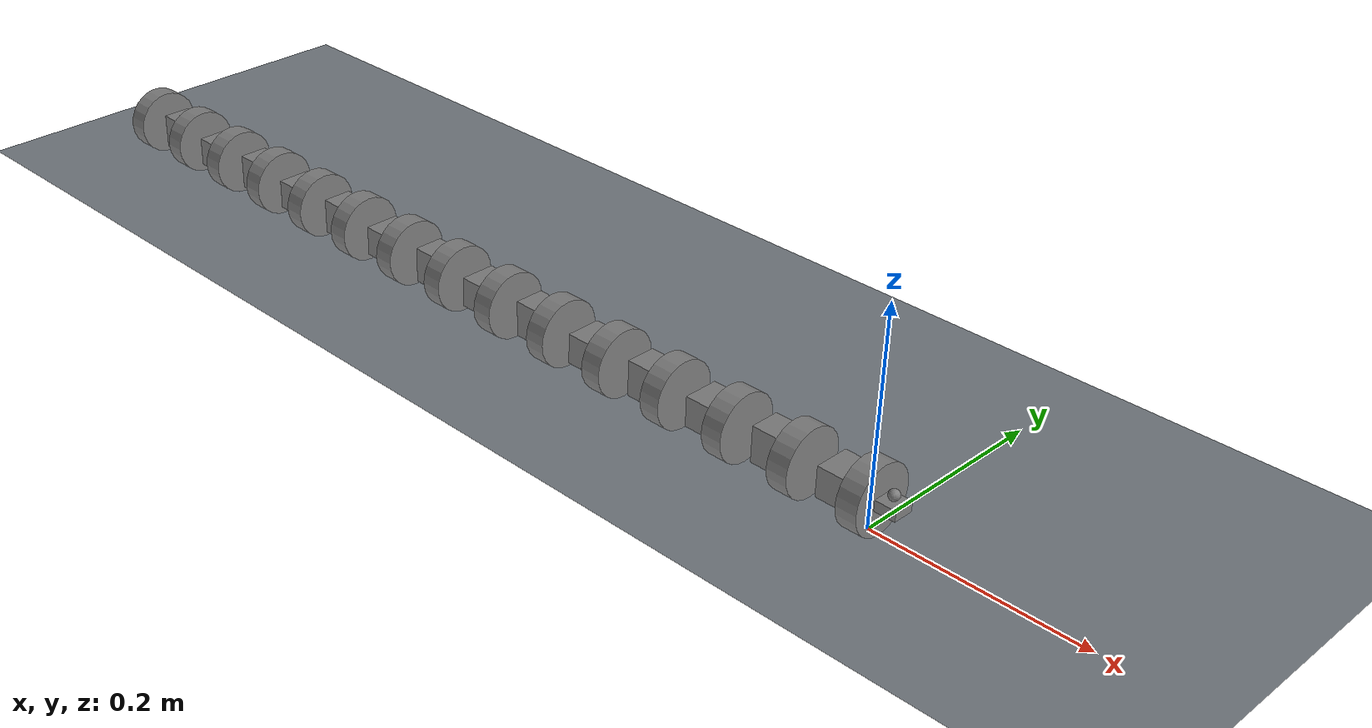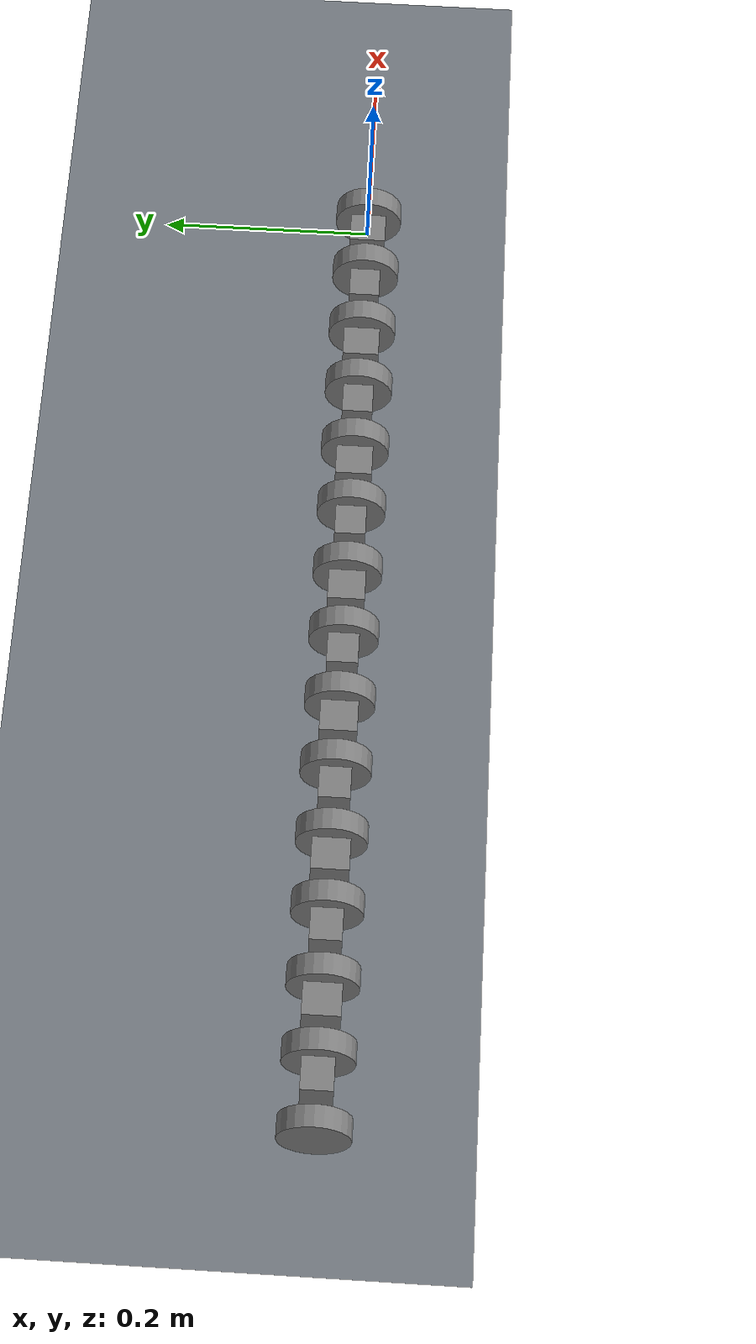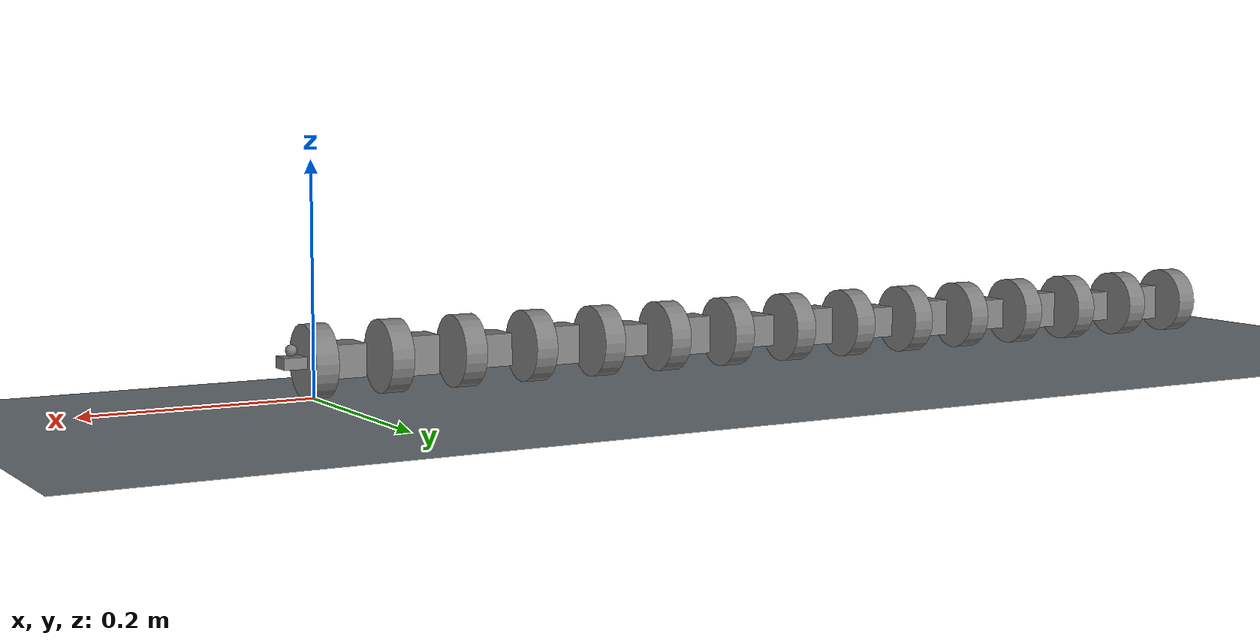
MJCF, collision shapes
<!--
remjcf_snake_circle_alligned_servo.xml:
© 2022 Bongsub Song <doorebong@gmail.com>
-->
<mujoco model="snake_scene_v1">
    <option timestep="0.005" integrator="implicitfast"/>

    <visual>
      <global offwidth="1920"  offheight="1080" />
    </visual>

    <size memory="100M"/>

    <include file="remjcf_snake_circle_alligned_servo.xml"/>

    <asset>
        <texture type="skybox" builtin="gradient" rgb1=".3 .5 .7" rgb2="0 0 0" width="512" height="512"/>
        <texture name="body" type="cube" builtin="flat" mark="cross" width="128" height="128"
                 rgb1="0.8 0.6 0.4" rgb2="0.8 0.6 0.4" markrgb="1 1 1" random="0.01"/>
        <material name="body" texture="body" texuniform="true" rgba="0.8 0.6 .4 1"/>
        <texture name="grid" type="2d" builtin="checker" width="512" height="512" rgb1=".1 .2 .3" rgb2=".2 .3 .4"/>
        <material name="grid" texture="grid" texrepeat="1 1" texuniform="true" reflectance=".2"/>
        <texture type="2d" name="groundplane" builtin="checker" mark="edge" rgb1="0.2 0.3 0.4" rgb2="0.1 0.2 0.3" markrgb="0.8 0.8 0.8" width="300" height="300"/>
        <texture name="texplane" type="2d" builtin="checker" rgb1=".8 .8 .8" rgb2=".1 0.15 0.2" width="512" height="512" mark="cross" markrgb=".8 .8 .8"/>
        <texture name="texgeom" type="cube" builtin="flat" mark="cross" width="127" height="1278" rgb1="0.8 0.6 0.4" rgb2="0.8 0.6 0.4" markrgb="1 1 1" random="0.01"/>
        <material name="matplane" reflectance="0.3" texture="texplane" texrepeat="2 2" texuniform="true"/>
        <material name="matgeom" texture="texgeom" texuniform="true" rgba="0.8 0.6 .4 1"/>
        <hfield name="terrain" ncol="201" nrow="201" size="30 30 5 .1"/>
    </asset>

      <worldbody>
        <!-- Flat plane -->
        <geom name="floor" pos="0 0 0" size="0 0 .25" type="plane" material="matplane" condim="6" friction="0.5 0.1 0.01"/>
      </worldbody>

    <contact>
        <!-- friction="normal tangential" -->

        <!-- 기본 -->

        <!-- 회전 및 구름 마찰 적용 -->
        <pair name="con_head" geom1="floor"   geom2="c-head"   condim="6" friction="1.5 1.3 0.01 0.004 0.004"/>
        <pair name="con_link1" geom1="floor"  geom2="c-link1"  condim="6" friction="1.5 1.3 0.01 0.004 0.004"/>
        <pair name="con_link2" geom1="floor"  geom2="c-link2"  condim="6" friction="1.5 1.3 0.01 0.004 0.004"/>
        <pair name="con_link3" geom1="floor"  geom2="c-link3"  condim="6" friction="1.5 1.3 0.01 0.004 0.004"/>
        <pair name="con_link4" geom1="floor"  geom2="c-link4"  condim="6" friction="1.5 1.3 0.01 0.004 0.004"/>
        <pair name="con_link5" geom1="floor"  geom2="c-link5"  condim="6" friction="1.5 1.3 0.01 0.004 0.004"/>
        <pair name="con_link6" geom1="floor"  geom2="c-link6"  condim="6" friction="1.5 1.3 0.01 0.004 0.004"/>
        <pair name="con_link7" geom1="floor"  geom2="c-link7"  condim="6" friction="1.5 1.3 0.01 0.004 0.004"/>
        <pair name="con_link8" geom1="floor"  geom2="c-link8"  condim="6" friction="1.5 1.3 0.01 0.004 0.004"/>
        <pair name="con_link9" geom1="floor"  geom2="c-link9"  condim="6" friction="1.5 1.3 0.01 0.004 0.004"/>
        <pair name="con_link10" geom1="floor" geom2="c-link10" condim="6" friction="1.5 1.3 0.01 0.004 0.004"/>
        <pair name="con_link11" geom1="floor" geom2="c-link11" condim="6" friction="1.5 1.3 0.01 0.004 0.004"/>
        <pair name="con_link12" geom1="floor" geom2="c-link12" condim="6" friction="1.5 1.3 0.01 0.004 0.004"/>
        <pair name="con_link13" geom1="floor" geom2="c-link13" condim="6" friction="1.5 1.3 0.01 0.004 0.004"/>
        <pair name="con_tail" geom1="floor"   geom2="c-tail"   condim="6" friction="1.5 1.3 0.01 0.004 0.004"/>
    </contact>
</mujoco>

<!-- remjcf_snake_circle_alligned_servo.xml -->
<!-- All right reserved -->
<!-- Description : BRM snake robot Mujoco simulation xml and axis alligned version. -->
<!-- v20220830 : Circular frame version -->
<!-- v20221103 : Body Frame Alligned -->
<!-- v20240122 : mesh contact is convert to default shape -->

<mujoco model="horcrux">

    <asset>
        <mesh name="head_link" file="./asset/Head.stl"/>
        <mesh name="v_link" file="./asset/Link2.stl"/>
        <mesh name="h_link" file="./asset/Link3.stl"/>
        <mesh name="tail_link" file="./asset/Tail.stl"/>
    </asset>

    <default>
        <default class="joint_defaults">
            <joint type="hinge" pos="0.0388 0 0" limited="true" range="-75 75" damping="0.6" stiffness="0" armature="0.01" />
        </default>
        <default class="C-frame">
            <geom type="cylinder" mass="0.05" condim="6" size="0.0318 0.01" rgba="0.5 0.5 0.5 0.1" priority="1" friction="0.7 0.015 0.001" pos="0 0 0" euler="0 90 0"/>
        </default>
        <default class="H-link">
            <geom type="box" mass="0.1" condim="6" size="0.01425 0.017 0.02325" rgba="0.5 0.5 0.5 0.1" priority="1" friction="0.76 0.015 0.001" pos="-0.017 0 0" euler="0 90 0"/>
        </default>
        <default class="V-link">
            <geom type="box" mass="0.1" condim="6" size="0.01425 0.017 0.02325" rgba="0.5 0.5 0.5 0.1" priority="1" friction="0.76 0.015 0.001" pos="-0.017 0 0" euler="90 90 0"/>
        </default>
        <default class="Mesh-head">
            <geom type="mesh" mesh="head_link" mass="0" pos="-0.029 0 0" euler="180 0 0" contype="0" conaffinity="0" group="2" rgba="0.7 0.4 0.4 1"/>
        </default>
        <default class="Mesh-H-link">
            <geom type="mesh" mesh="h_link" mass="0" pos="-0.029 0 0" euler="180 0 0" contype="0" conaffinity="0" group="2" rgba="0.7 0.4 0.4 1"/>
        </default>
        <default class="Mesh-V-link">
            <geom type="mesh" mesh="v_link" mass="0" pos="-0.029 0 0" euler="0 0 0" contype="0" conaffinity="0" group="2" rgba="0.4 0.4 0.7 1"/>
        </default>
        <default class="Mesh-tail">
            <geom type="mesh" mesh="tail_link" mass="0" pos="0.001875 0 0" euler="0 0 0" contype="0" conaffinity="0" group="2" rgba="0.7 0.4 0.4 1"/>
        </default>
    </default>

    <worldbody>
        <light directional="false" diffuse="1 1 1" specular="0 0 0" pos="0 0 15" dir="0 0 -1" castshadow="false"/>

        <!-- Celing camera -->
        <body>
            <camera name="ceiling" mode="fixed" fovy="90" pos="0 0 2.5" euler="0 0 0"/>
        </body>

        <body name="head" pos="0 0 0.032" euler="0 0 0">
            <camera name="head_mount" mode="fixed" fovy="120" pos="0.02 0 0.0" euler="0 -90 -90"/>
            <geom type="box" mass="0.01" condim="6" size="0.03 0.01 0.005"/>
            <site name="s_head" pos="0.02 0 0.01" euler="0 0 0"/>
            <freejoint name="root"/>
            <geom class="Mesh-head"/>
            <geom name="c-head" class="C-frame"/>
            <geom class="H-link"/>
            <body name="link1" pos="-0.0678 0 0" euler="0 0 0">
                <joint class="joint_defaults" name="joint1" axis="0 1 0"/>
                <geom class="Mesh-V-link"/>
                <geom name="c-link1" class="C-frame"/>
                <geom class="V-link"/>
                <body name="link2" pos="-0.0678 0 0" euler="0 0 0">
                    <joint class="joint_defaults" name="joint2" axis="0 0 1"/>
                    <geom class="Mesh-H-link"/>
                    <geom name="c-link2" class="C-frame"/>
                    <geom class="H-link"/>
                    <body name="link3" pos="-0.0678 0 0" euler="0 0 0">
                        <joint class="joint_defaults" name="joint3" axis="0 1 0"/>
                        <geom class="Mesh-V-link"/>
                        <geom name="c-link3" class="C-frame"/>
                        <geom class="V-link"/>
                        <body name="link4" pos="-0.0678 0 0" euler="0 0 0">
                            <joint class="joint_defaults" name="joint4" axis="0 0 1"/>
                            <geom class="Mesh-H-link"/>
                            <geom name="c-link4" class="C-frame"/>
                            <geom class="H-link"/>
                            <body name="link5" pos="-0.0678 0 0" euler="0 0 0">
                                <joint class="joint_defaults" name="joint5" axis="0 1 0"/>
                                <geom class="Mesh-V-link"/>
                                <geom name="c-link5" class="C-frame"/>
                                <geom class="V-link"/>
                                <body name="link6" pos="-0.0678 0 0" euler="0 0 0">
                                    <joint class="joint_defaults" name="joint6" axis="0 0 1"/>
                                    <geom class="Mesh-H-link"/>
                                    <geom name="c-link6" class="C-frame"/>
                                    <geom class="H-link"/>
                                    <body name="link7" pos="-0.0678 0 0" euler="0 0 0">
                                        <joint class="joint_defaults" name="joint7" axis="0 1 0"/>
                                        <geom class="Mesh-V-link"/>
                                        <geom name="c-link7" class="C-frame"/>
                                        <geom class="V-link"/>
                                        <body name="link8" pos="-0.0678 0 0" euler="0 0 0">
                                            <joint class="joint_defaults" name="joint8" axis="0 0 1"/>
                                            <geom class="Mesh-H-link"/>
                                            <geom name="c-link8" class="C-frame"/>
                                            <geom class="H-link"/>
                                            <body name="link9" pos="-0.0678 0 0" euler="0 0 0">
                                                <joint class="joint_defaults" name="joint9" axis="0 1 0"/>
                                                <geom class="Mesh-V-link"/>
                                                <geom name="c-link9" class="C-frame"/>
                                                <geom class="V-link"/>
                                                <body name="link10" pos="-0.0678 0 0" euler="0 0 0">
                                                    <joint class="joint_defaults" name="joint10" axis="0 0 1"/>
                                                    <geom class="Mesh-H-link"/>
                                                    <geom name="c-link10" class="C-frame"/>
                                                    <geom class="H-link"/>
                                                    <body name="link11" pos="-0.0678 0 0" euler="0 0 0">
                                                        <joint class="joint_defaults" name="joint11" axis="0 1 0"/>
                                                        <geom class="Mesh-V-link"/>
                                                        <geom name="c-link11" class="C-frame"/>
                                                        <geom class="V-link"/>
                                                        <body name="link12" pos="-0.0678 0 0" euler="0 0 0">
                                                            <joint class="joint_defaults" name="joint12" axis="0 0 1"/>
                                                            <geom class="Mesh-H-link"/>
                                                            <geom name="c-link12" class="C-frame"/>
                                                            <geom class="H-link"/>
                                                            <body name="link13" pos="-0.0678 0 0" euler="0 0 0">
                                                                <joint class="joint_defaults" name="joint13" axis="0 1 0"/>
                                                                <geom class="Mesh-V-link"/>
                                                                <geom name="c-link13" class="C-frame"/>
                                                                <geom class="V-link"/>
                                                                <body name="tail" pos="-0.0678 0 0" euler="0 0 0">
                                                                    <joint class="joint_defaults" name="joint14" axis="0 0 1"/>
                                                                    <geom class="Mesh-tail"/>
                                                                    <geom name="c-tail" class="C-frame"/>
                                                                </body>
                                                            </body>
                                                        </body>
                                                    </body>
                                                </body>
                                            </body>
                                        </body>
                                    </body>
                                </body>
                            </body>
                        </body>
                    </body>
                </body>
            </body>
            <body>
                <camera name="com" mode="trackcom" fovy="45" pos="-1.8 0 1.8" euler="0 -45 -90"/>
            </body>
        </body>
    </worldbody>

    <!-- Motor -->

    <!-- Servo -->
    <actuator>
        <position name="servo_1"  ctrllimited="true" ctrlrange="-1.4 1.4" forcelimited="true" forcerange="-3.5 3.5" joint="joint1"  kp="40"/>
        <position name="servo_2"  ctrllimited="true" ctrlrange="-1.4 1.4" forcelimited="true" forcerange="-3.5 3.5" joint="joint2"  kp="40"/>
        <position name="servo_3"  ctrllimited="true" ctrlrange="-1.4 1.4" forcelimited="true" forcerange="-3.5 3.5" joint="joint3"  kp="40"/>
        <position name="servo_4"  ctrllimited="true" ctrlrange="-1.4 1.4" forcelimited="true" forcerange="-3.5 3.5" joint="joint4"  kp="40"/>
        <position name="servo_5"  ctrllimited="true" ctrlrange="-1.4 1.4" forcelimited="true" forcerange="-3.5 3.5" joint="joint5"  kp="40"/>
        <position name="servo_6"  ctrllimited="true" ctrlrange="-1.4 1.4" forcelimited="true" forcerange="-3.5 3.5" joint="joint6"  kp="40"/>
        <position name="servo_7"  ctrllimited="true" ctrlrange="-1.4 1.4" forcelimited="true" forcerange="-3.5 3.5" joint="joint7"  kp="40"/>
        <position name="servo_8"  ctrllimited="true" ctrlrange="-1.4 1.4" forcelimited="true" forcerange="-3.5 3.5" joint="joint8"  kp="40"/>
        <position name="servo_9"  ctrllimited="true" ctrlrange="-1.4 1.4" forcelimited="true" forcerange="-3.5 3.5" joint="joint9"  kp="40"/>
        <position name="servo_10" ctrllimited="true" ctrlrange="-1.4 1.4" forcelimited="true" forcerange="-3.5 3.5" joint="joint10" kp="40"/>
        <position name="servo_11" ctrllimited="true" ctrlrange="-1.4 1.4" forcelimited="true" forcerange="-3.5 3.5" joint="joint11" kp="40"/>
        <position name="servo_12" ctrllimited="true" ctrlrange="-1.4 1.4" forcelimited="true" forcerange="-3.5 3.5" joint="joint12" kp="40"/>
        <position name="servo_13" ctrllimited="true" ctrlrange="-1.4 1.4" forcelimited="true" forcerange="-3.5 3.5" joint="joint13" kp="40"/>
        <position name="servo_14" ctrllimited="true" ctrlrange="-1.4 1.4" forcelimited="true" forcerange="-3.5 3.5" joint="joint14" kp="40"/>
    </actuator>

    <sensor>
        <jointpos name="pos_joint1"  joint="joint1" />
        <jointpos name="pos_joint2"  joint="joint2" />
        <jointpos name="pos_joint3"  joint="joint3" />
        <jointpos name="pos_joint4"  joint="joint4" />
        <jointpos name="pos_joint5"  joint="joint5" />
        <jointpos name="pos_joint6"  joint="joint6" />
        <jointpos name="pos_joint7"  joint="joint7" />
        <jointpos name="pos_joint8"  joint="joint8" />
        <jointpos name="pos_joint9"  joint="joint9" />
        <jointpos name="pos_joint10" joint="joint10"/>
        <jointpos name="pos_joint11" joint="joint11"/>
        <jointpos name="pos_joint12" joint="joint12"/>
        <jointpos name="pos_joint13" joint="joint13"/>
        <jointpos name="pos_joint14" joint="joint14"/>

        <jointvel name="vel_joint1"  joint="joint1" />
        <jointvel name="vel_joint2"  joint="joint2" />
        <jointvel name="vel_joint3"  joint="joint3" />
        <jointvel name="vel_joint4"  joint="joint4" />
        <jointvel name="vel_joint5"  joint="joint5" />
        <jointvel name="vel_joint6"  joint="joint6" />
        <jointvel name="vel_joint7"  joint="joint7" />
        <jointvel name="vel_joint8"  joint="joint8" />
        <jointvel name="vel_joint9"  joint="joint9" />
        <jointvel name="vel_joint10" joint="joint10"/>
        <jointvel name="vel_joint11" joint="joint11"/>
        <jointvel name="vel_joint12" joint="joint12"/>
        <jointvel name="vel_joint13" joint="joint13"/>
        <jointvel name="vel_joint14" joint="joint14"/>

        <framequat name="head_quat" objtype="site" objname="s_head"/>
        <gyro name="head_angvel" site="s_head"/>
        <accelerometer name="head_linacc" site="s_head"/>

    </sensor>

</mujoco>
